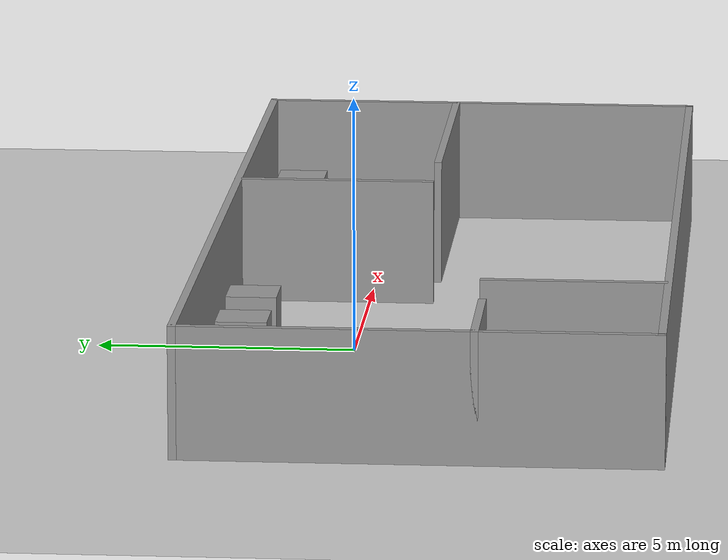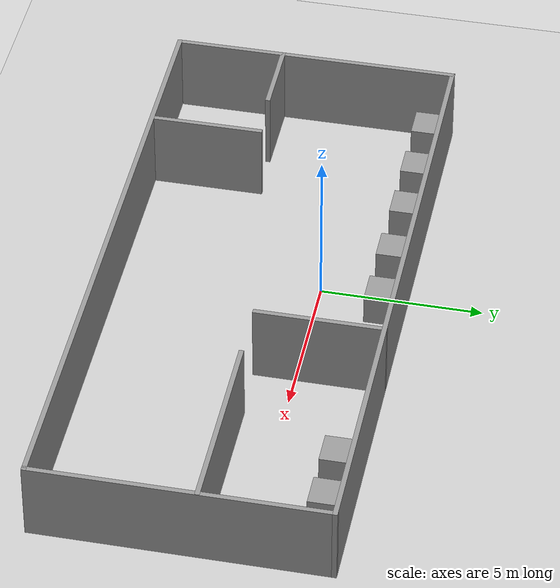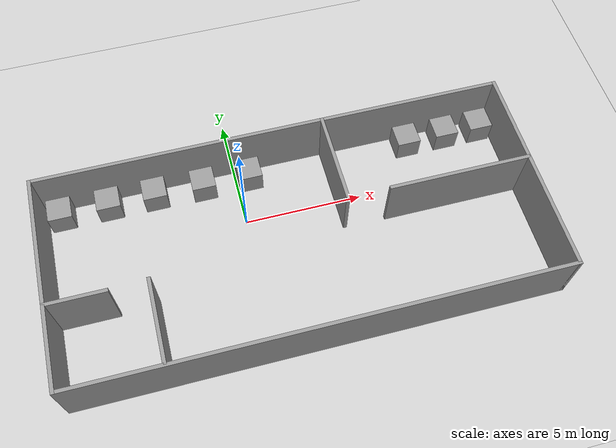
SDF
<sdf version="1.7">
 <world name="default">
  <light name="sun" type="directional">
   <pose>0 0 10 0 -0 0</pose>
   <diffuse>0.8 0.8 0.8 1</diffuse>
   <specular>0.2 0.2 0.2 1</specular>
   <attenuation>
    <range>1000</range>
    <constant>0.9</constant>
    <linear>0.01</linear>
    <quadratic>0.001</quadratic>
   </attenuation>
   <direction>-0.5 0.1 -0.9</direction>
   <spot><inner_angle>0</inner_angle><outer_angle>0</outer_angle><falloff>0</falloff></spot>
  </light>
  <model name="ground_plane">
   <static>1</static>
   <link name="link">
    <collision name="collision">
     <geometry><plane><normal>0 0 1</normal><size>100 100</size></plane></geometry>
     <surface>
      <contact><collide_bitmask>65535</collide_bitmask></contact>
      <friction><ode><mu>100</mu><mu2>50</mu2></ode></friction>
     </surface>
    </collision>
    <visual name="visual">
     <cast_shadows>0</cast_shadows>
     <geometry><plane><normal>0 0 1</normal><size>100 100</size></plane></geometry>
     <material>
      <script><uri>file://media/materials/scripts/gazebo.material</uri><name>Gazebo/Grey</name></script>
     </material>
    </visual>
   </link>
  </model>
  <gravity>0 0 -9.8</gravity>
  <magnetic_field>6e-06 2.3e-05 -4.2e-05</magnetic_field>
  <atmosphere type="adiabatic"/>
  <physics type="ode">
   <max_step_size>0.001</max_step_size>
   <real_time_factor>1</real_time_factor>
   <real_time_update_rate>1000</real_time_update_rate>
  </physics>
  <scene><ambient>0.4 0.4 0.4 1</ambient><background>0.7 0.7 0.7 1</background><shadows>1</shadows></scene>
  <spherical_coordinates>
   <surface_model>EARTH_WGS84</surface_model>
   <latitude_deg>0</latitude_deg>
   <longitude_deg>0</longitude_deg>
   <elevation>0</elevation>
   <heading_deg>0</heading_deg>
  </spherical_coordinates>
  <model name="Untitled">
   <pose>1.7305 -1.78204 0 0 -0 0</pose>
   <link name="Wall_0">
    <collision name="Wall_0_Collision">
     <geometry><box><size>9 0.15 2.5</size></box></geometry>
     <pose>0 0 1.25 0 -0 0</pose>
    </collision>
    <visual name="Wall_0_Visual">
     <pose>0 0 1.25 0 -0 0</pose>
     <geometry><box><size>9 0.15 2.5</size></box></geometry>
     <material>
      <script><uri>file://media/materials/scripts/gazebo.material</uri><name>Gazebo/Grey</name></script>
      <ambient>1 1 1 1</ambient>
     </material>
     <meta><layer>0</layer></meta>
    </visual>
    <pose>-9.925 0 0 0 -0 -1.5708</pose>
   </link>
   <link name="Wall_1">
    <collision name="Wall_1_Collision">
     <geometry><box><size>20 0.15 2.5</size></box></geometry>
     <pose>0 0 1.25 0 -0 0</pose>
    </collision>
    <visual name="Wall_1_Visual">
     <pose>0 0 1.25 0 -0 0</pose>
     <geometry><box><size>20 0.15 2.5</size></box></geometry>
     <material>
      <script><uri>file://media/materials/scripts/gazebo.material</uri><name>Gazebo/Grey</name></script>
      <ambient>1 1 1 1</ambient>
     </material>
     <meta><layer>0</layer></meta>
    </visual>
    <pose>-0 -4.425 0 0 -0 0</pose>
   </link>
   <link name="Wall_10">
    <collision name="Wall_10_Collision">
     <geometry><box><size>4 0.15 2.5</size></box></geometry>
     <pose>0 0 1.25 0 -0 0</pose>
    </collision>
    <visual name="Wall_10_Visual">
     <pose>0 0 1.25 0 -0 0</pose>
     <geometry><box><size>4 0.15 2.5</size></box></geometry>
     <material>
      <script><uri>file://media/materials/scripts/gazebo.material</uri><name>Gazebo/Grey</name></script>
      <ambient>1 1 1 1</ambient>
     </material>
     <meta><layer>0</layer></meta>
    </visual>
    <pose>2.242 2.5 0 0 -0 -1.5708</pose>
   </link>
   <link name="Wall_12">
    <collision name="Wall_12_Collision">
     <geometry><box><size>6 0.15 2.5</size></box></geometry>
     <pose>0 0 1.25 0 -0 0</pose>
    </collision>
    <visual name="Wall_12_Visual">
     <pose>0 0 1.25 0 -0 0</pose>
     <geometry><box><size>6 0.15 2.5</size></box></geometry>
     <material>
      <script><uri>file://media/materials/scripts/gazebo.material</uri><name>Gazebo/Grey</name></script>
      <ambient>1 1 1 1</ambient>
     </material>
     <meta><layer>0</layer></meta>
    </visual>
    <pose>6.98221 0.53156 0 0 -0 3.14159</pose>
   </link>
   <link name="Wall_2">
    <collision name="Wall_2_Collision">
     <geometry><box><size>9 0.15 2.5</size></box></geometry>
     <pose>0 0 1.25 0 -0 0</pose>
    </collision>
    <visual name="Wall_2_Visual">
     <pose>0 0 1.25 0 -0 0</pose>
     <geometry><box><size>9 0.15 2.5</size></box></geometry>
     <material>
      <script><uri>file://media/materials/scripts/gazebo.material</uri><name>Gazebo/Grey</name></script>
      <ambient>1 1 1 1</ambient>
     </material>
     <meta><layer>0</layer></meta>
    </visual>
    <pose>9.925 0 0 0 -0 1.5708</pose>
   </link>
   <link name="Wall_3">
    <collision name="Wall_3_Collision">
     <geometry><box><size>20 0.15 2.5</size></box></geometry>
     <pose>0 0 1.25 0 -0 0</pose>
    </collision>
    <visual name="Wall_3_Visual">
     <pose>0 0 1.25 0 -0 0</pose>
     <geometry><box><size>20 0.15 2.5</size></box></geometry>
     <material>
      <script><uri>file://media/materials/scripts/gazebo.material</uri><name>Gazebo/Grey</name></script>
      <ambient>1 1 1 1</ambient>
     </material>
     <meta><layer>0</layer></meta>
    </visual>
    <pose>-0 4.425 0 0 -0 3.14159</pose>
   </link>
   <link name="Wall_6">
    <collision name="Wall_6_Collision">
     <geometry><box><size>2.5 0.15 2.5</size></box></geometry>
     <pose>0 0 1.25 0 -0 0</pose>
    </collision>
    <visual name="Wall_6_Visual">
     <pose>0 0 1.25 0 -0 0</pose>
     <geometry><box><size>2.5 0.15 2.5</size></box></geometry>
     <material>
      <script><uri>file://media/materials/scripts/gazebo.material</uri><name>Gazebo/Grey</name></script>
      <ambient>1 1 1 1</ambient>
     </material>
     <meta><layer>0</layer></meta>
    </visual>
    <pose>-8.75 -1.05015 0 0 -0 0</pose>
   </link>
   <link name="Wall_8">
    <collision name="Wall_8_Collision">
     <geometry><box><size>3.5 0.15 2.5</size></box></geometry>
     <pose>0 0 1.25 0 -0 0</pose>
    </collision>
    <visual name="Wall_8_Visual">
     <pose>0 0 1.25 0 -0 0</pose>
     <geometry><box><size>3.5 0.15 2.5</size></box></geometry>
     <material>
      <script><uri>file://media/materials/scripts/gazebo.material</uri><name>Gazebo/Grey</name></script>
      <ambient>1 1 1 1</ambient>
     </material>
     <meta><layer>0</layer></meta>
    </visual>
    <pose>-5.97072 -2.66432 0 0 -0 -1.5708</pose>
   </link>
   <static>1</static>
  </model>
  <model name="unit_box">
   <pose>10.9936 1.99778 0.499995 -1e-05 -0 -0</pose>
   <link name="link">
    <inertial>
     <mass>1</mass>
     <inertia>
      <ixx>0.166667</ixx>
      <ixy>0</ixy>
      <ixz>0</ixz>
      <iyy>0.166667</iyy>
      <iyz>0</iyz>
      <izz>0.166667</izz>
     </inertia>
    </inertial>
    <collision name="collision"><geometry><box><size>1 1 1</size></box></geometry></collision>
    <visual name="visual">
     <geometry><box><size>1 1 1</size></box></geometry>
     <material>
      <script><name>Gazebo/Grey</name><uri>file://media/materials/scripts/gazebo.material</uri></script>
     </material>
    </visual>
   </link>
  </model>
  <model name="unit_box_0">
   <pose>9.40948 2.00797 0.499995 0 1e-05 0</pose>
   <link name="link">
    <inertial>
     <mass>1</mass>
     <inertia>
      <ixx>0.166667</ixx>
      <ixy>0</ixy>
      <ixz>0</ixz>
      <iyy>0.166667</iyy>
      <iyz>0</iyz>
      <izz>0.166667</izz>
     </inertia>
    </inertial>
    <collision name="collision"><geometry><box><size>1 1 1</size></box></geometry></collision>
    <visual name="visual">
     <geometry><box><size>1 1 1</size></box></geometry>
     <material>
      <script><name>Gazebo/Grey</name><uri>file://media/materials/scripts/gazebo.material</uri></script>
     </material>
    </visual>
   </link>
  </model>
  <model name="unit_box_1">
   <pose>7.6732 2.00798 0.499995 -1e-05 -0 -0</pose>
   <link name="link">
    <inertial>
     <mass>1</mass>
     <inertia>
      <ixx>0.166667</ixx>
      <ixy>0</ixy>
      <ixz>0</ixz>
      <iyy>0.166667</iyy>
      <iyz>0</iyz>
      <izz>0.166667</izz>
     </inertia>
    </inertial>
    <collision name="collision"><geometry><box><size>1 1 1</size></box></geometry></collision>
    <visual name="visual">
     <geometry><box><size>1 1 1</size></box></geometry>
     <material>
      <script><name>Gazebo/Grey</name><uri>file://media/materials/scripts/gazebo.material</uri></script>
     </material>
    </visual>
   </link>
  </model>
  <model name="unit_box_2">
   <pose>0.588379 2.02328 0.499995 0 1e-05 0</pose>
   <link name="link">
    <inertial>
     <mass>1</mass>
     <inertia>
      <ixx>0.166667</ixx>
      <ixy>0</ixy>
      <ixz>0</ixz>
      <iyy>0.166667</iyy>
      <iyz>0</iyz>
      <izz>0.166667</izz>
     </inertia>
    </inertial>
    <collision name="collision"><geometry><box><size>1 1 1</size></box></geometry></collision>
    <visual name="visual">
     <geometry><box><size>1 1 1</size></box></geometry>
     <material>
      <script><name>Gazebo/Grey</name><uri>file://media/materials/scripts/gazebo.material</uri></script>
     </material>
    </visual>
   </link>
  </model>
  <model name="unit_box_3">
   <pose>-1.42569 2.0233 0.499995 -1e-05 -0 -0</pose>
   <link name="link">
    <inertial>
     <mass>1</mass>
     <inertia>
      <ixx>0.166667</ixx>
      <ixy>0</ixy>
      <ixz>0</ixz>
      <iyy>0.166667</iyy>
      <iyz>0</iyz>
      <izz>0.166667</izz>
     </inertia>
    </inertial>
    <collision name="collision"><geometry><box><size>1 1 1</size></box></geometry></collision>
    <visual name="visual">
     <geometry><box><size>1 1 1</size></box></geometry>
     <material>
      <script><name>Gazebo/Grey</name><uri>file://media/materials/scripts/gazebo.material</uri></script>
     </material>
    </visual>
   </link>
  </model>
  <model name="unit_box_4">
   <pose>-3.50916 2.06797 0.499996 9e-06 -0 -5e-06</pose>
   <link name="link">
    <inertial>
     <mass>1</mass>
     <inertia>
      <ixx>0.166667</ixx>
      <ixy>0</ixy>
      <ixz>0</ixz>
      <iyy>0.166667</iyy>
      <iyz>0</iyz>
      <izz>0.166667</izz>
     </inertia>
    </inertial>
    <collision name="collision"><geometry><box><size>1 1 1</size></box></geometry></collision>
    <visual name="visual">
     <geometry><box><size>1 1 1</size></box></geometry>
     <material>
      <script><name>Gazebo/Grey</name><uri>file://media/materials/scripts/gazebo.material</uri></script>
     </material>
    </visual>
   </link>
  </model>
  <model name="unit_box_5">
   <pose>-5.47271 2.06798 0.499995 0 1e-05 -6e-06</pose>
   <link name="link">
    <inertial>
     <mass>1</mass>
     <inertia>
      <ixx>0.166667</ixx>
      <ixy>0</ixy>
      <ixz>0</ixz>
      <iyy>0.166667</iyy>
      <iyz>0</iyz>
      <izz>0.166667</izz>
     </inertia>
    </inertial>
    <collision name="collision"><geometry><box><size>1 1 1</size></box></geometry></collision>
    <visual name="visual">
     <geometry><box><size>1 1 1</size></box></geometry>
     <material>
      <script><name>Gazebo/Grey</name><uri>file://media/materials/scripts/gazebo.material</uri></script>
     </material>
    </visual>
   </link>
  </model>
  <model name="unit_box_6">
   <pose>-7.4867 2.06798 0.5 0 0 -6e-06</pose>
   <link name="link">
    <inertial>
     <mass>1</mass>
     <inertia>
      <ixx>0.166667</ixx>
      <ixy>0</ixy>
      <ixz>0</ixz>
      <iyy>0.166667</iyy>
      <iyz>0</iyz>
      <izz>0.166667</izz>
     </inertia>
    </inertial>
    <collision name="collision"><geometry><box><size>1 1 1</size></box></geometry></collision>
    <visual name="visual">
     <geometry><box><size>1 1 1</size></box></geometry>
     <material>
      <script><name>Gazebo/Grey</name><uri>file://media/materials/scripts/gazebo.material</uri></script>
     </material>
    </visual>
   </link>
  </model>
 </world>
</sdf>
